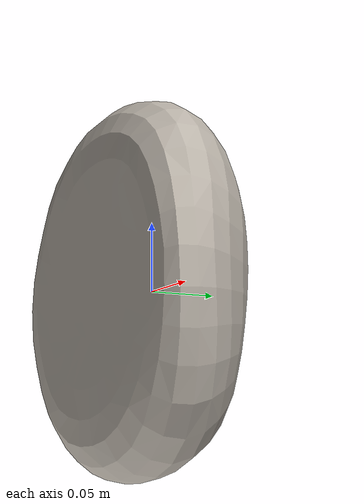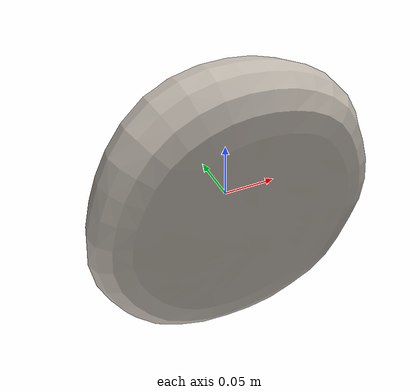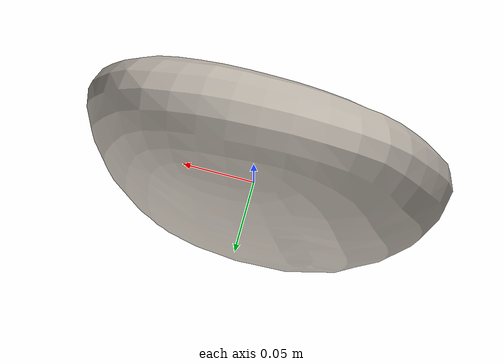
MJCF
<mujoco model="Bread_22">
  <compiler autolimits="true" boundmass="0.01" angle="radian"/>
  <default>
    <default class="/">
      <default class="__VISUAL_MJT__">
        <geom contype="0" conaffinity="0" group="0"/>
      </default>
      <default class="__STRUCTURAL_MJT__">
        <geom contype="8" conaffinity="15" group="4" friction="0.90000000000000002 0.90000000000000002 0.001" solref="0.025000000000000001 1" solimp="0.998 0.998 0.001"/>
      </default>
      <default class="__DYNAMIC_MJT__">
        <geom contype="1" conaffinity="15" group="4" friction="0.90000000000000002 0.90000000000000002 0.001" solref="0.025000000000000001 1" solimp="0.998 0.998 0.001"/>
      </default>
    </default>
  </default>
  <asset>
    <texture name="HoneyBread_Mat1" type="2d" file="HoneyBread_AlbedoTransparency.png"/>
    <material name="material_HoneyBread_Mat1" class="/" texture="HoneyBread_Mat1" specular="0.5" shininess="0.5" rgba="1 1 1 1"/>
    <mesh name="Bread_22_honeybread_a_mesh" class="/" file="Bread_22_honeybread_a_mesh/Bread_22_honeybread_a_mesh.obj" scale="1 1 1"/>
  </asset>
  <worldbody>
    <body name="Bread_22">
      <joint name="Bread_22_free" class="/" type="free" pos="0 0 0" axis="0 0 1" stiffness="0" range="0 0" armature="0" damping="0.10000000000000001" frictionloss="0"/>
      <body name="Bread_22_honeybread_a_mesh" pos="-0.0030799999999999998 -0.00048000000000000001 -0.0014" quat="1 0 0 0">
        <geom name="Bread_22_honeybread_a_mesh" class="__VISUAL_MJT__" type="mesh" material="material_HoneyBread_Mat1" shellinertia="false" mesh="Bread_22_honeybread_a_mesh"/>
        <geom name="Bread_22_PrimitiveCollider_0" class="__DYNAMIC_MJT__" type="box" size="0.057188544422388077 0.025822218507528305 0.13078546524047852" rgba="0 1 0 1" pos="-0.0030841827392578125 -0.022482406347990036 0.001399993896484375" quat="1 0 0 0"/>
        <geom name="Bread_22_PrimitiveCollider_1" class="__DYNAMIC_MJT__" type="box" size="0.045551154762506485 0.012045500800013542 0.11727242171764374" rgba="0 1 0 1" pos="-0.0040070000104606152 0.015323702245950699 0.00139999995008111" quat="1 0 0 0"/>
        <geom name="Bread_22_PrimitiveCollider_2" class="__DYNAMIC_MJT__" type="box" size="0.034732788801193237 0.010844714939594269 0.075768426060676575" rgba="0 1 0 1" pos="-0.0040072998963296413 0.038417913019657135 0.001399993896484375" quat="1 0 0 0"/>
        <geom name="Bread_22_PrimitiveCollider_3" class="__DYNAMIC_MJT__" type="box" size="0.057188749313354492 0.025822216644883156 0.13078552484512329" rgba="0 1 0 1" pos="-0.0030841827392578125 -0.022482402622699738 0.001399993896484375" quat="0.70710784196853638 0 0.70710575580596924 0"/>
        <geom name="Bread_22_PrimitiveCollider_4" class="__DYNAMIC_MJT__" type="box" size="0.045551057904958725 0.012045495212078094 0.11727225780487061" rgba="0 1 0 1" pos="-0.0030841827392578125 0.015322896651923656 0.00047684001037850976" quat="0.70710784196853638 0 0.70710575580596924 0"/>
        <geom name="Bread_22_PrimitiveCollider_5" class="__DYNAMIC_MJT__" type="box" size="0.034732859581708908 0.010844806209206581 0.07576926052570343" rgba="0 1 0 1" pos="-0.0030841827392578125 0.03841802105307579 0.00047684001037850976" quat="0.70710784196853638 0 0.70710575580596924 0"/>
        <geom name="Bread_22_PrimitiveCollider_6" class="__DYNAMIC_MJT__" type="box" size="0.057188767939805984 0.025822216644883156 0.13078522682189941" rgba="0 1 0 1" pos="-0.0030841827392578125 -0.022482402622699738 0.001399993896484375" quat="0.92387980222702026 0 0.38268274068832397 0"/>
        <geom name="Bread_22_PrimitiveCollider_7" class="__DYNAMIC_MJT__" type="box" size="0.045551072806119919 0.012045495212078094 0.11727199703454971" rgba="0 1 0 1" pos="-0.0037364999298006296 0.015322332270443439 0.00074768002377822995" quat="0.92387980222702026 0 0.38268274068832397 0"/>
        <geom name="Bread_22_PrimitiveCollider_8" class="__DYNAMIC_MJT__" type="box" size="0.034732867032289505 0.010844806209206581 0.075769096612930298" rgba="0 1 0 1" pos="-0.0037364999298006296 0.03841802105307579 0.00074768002377822995" quat="0.92387980222702026 0 0.38268274068832397 0"/>
        <geom name="Bread_22_PrimitiveCollider_9" class="__DYNAMIC_MJT__" type="box" size="0.057188749313354492 0.025822216644883156 0.13078552484512329" rgba="0 1 0 1" pos="-0.0030841827392578125 -0.022482402622699738 0.001399993896484375" quat="0.38268548250198364 0 0.92387866973876953 0"/>
        <geom name="Bread_22_PrimitiveCollider_10" class="__DYNAMIC_MJT__" type="box" size="0.045551057904958725 0.012045495212078094 0.11727225780487061" rgba="0 1 0 1" pos="-0.0024319000076502562 0.015322896651923656 0.00074768002377822995" quat="0.38268548250198364 0 0.92387866973876953 0"/>
        <geom name="Bread_22_PrimitiveCollider_11" class="__DYNAMIC_MJT__" type="box" size="0.034732859581708908 0.010844806209206581 0.07576926052570343" rgba="0 1 0 1" pos="-0.0024319000076502562 0.03841802105307579 0.00074768002377822995" quat="0.38268548250198364 0 0.92387866973876953 0"/>
      </body>
    </body>
  </worldbody>
</mujoco>
